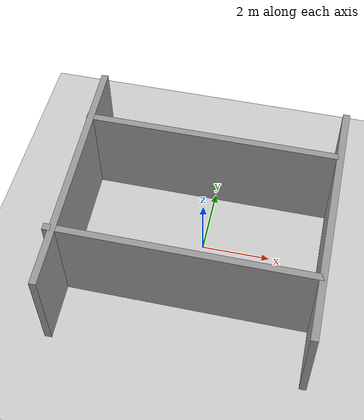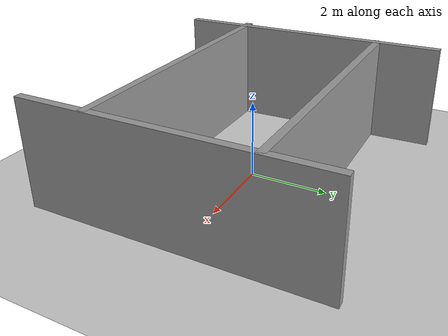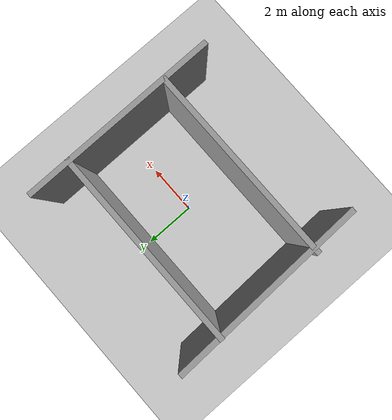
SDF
<sdf version="1.6">
 <world name="default">
  <light name="sun" type="directional">
   <pose>0 0 10 0 -0 0</pose>
   <diffuse>0.8 0.8 0.8 1</diffuse>
   <specular>0.2 0.2 0.2 1</specular>
   <attenuation>
    <range>1000</range>
    <constant>0.9</constant>
    <linear>0.01</linear>
    <quadratic>0.001</quadratic>
   </attenuation>
   <direction>-0.5 0.1 -0.9</direction>
  </light>
  <model name="ground_plane">
   <static>1</static>
   <link name="link">
    <collision name="collision">
     <geometry><plane><normal>0 0 1</normal><size>100 100</size></plane></geometry>
     <surface>
      <contact><collide_bitmask>65535</collide_bitmask></contact>
      <friction><ode><mu>100</mu><mu2>50</mu2></ode></friction>
     </surface>
    </collision>
    <visual name="visual">
     <cast_shadows>0</cast_shadows>
     <geometry><plane><normal>0 0 1</normal><size>100 100</size></plane></geometry>
     <material>
      <script><uri>file://media/materials/scripts/gazebo.material</uri><name>Gazebo/Grey</name></script>
     </material>
    </visual>
   </link>
  </model>
  <gravity>0 0 -9.8</gravity>
  <magnetic_field>6e-06 2.3e-05 -4.2e-05</magnetic_field>
  <atmosphere type="adiabatic"/>
  <physics name="default_physics" default="0" type="ode">
   <max_step_size>0.001</max_step_size>
   <real_time_factor>1</real_time_factor>
   <real_time_update_rate>1000</real_time_update_rate>
  </physics>
  <scene><ambient>0.4 0.4 0.4 1</ambient><background>0.7 0.7 0.7 1</background><shadows>1</shadows></scene>
  <audio><device>default</device></audio>
  <spherical_coordinates>
   <surface_model>EARTH_WGS84</surface_model>
   <latitude_deg>0</latitude_deg>
   <longitude_deg>0</longitude_deg>
   <elevation>0</elevation>
   <heading_deg>0</heading_deg>
  </spherical_coordinates>
  <model name="grey_wall">
   <static>1</static>
   <link name="link">
    <pose>0 0 1.4 0 -0 0</pose>
    <collision name="collision"><geometry><box><size>7.5 0.2 2.8</size></box></geometry></collision>
    <visual name="visual">
     <cast_shadows>0</cast_shadows>
     <geometry><box><size>7.5 0.2 2.8</size></box></geometry>
     <material>
      <script>
       <uri>model://grey_wall/materials/scripts</uri>
       <uri>model://grey_wall/materials/textures</uri>
       <name>vrc/grey_wall</name>
      </script>
     </material>
    </visual>
   </link>
   <pose>-0.139016 -2.0761 0 0 -0 0</pose>
  </model>
  <model name="grey_wall_0">
   <static>1</static>
   <link name="link">
    <pose>0 0 1.4 0 -0 0</pose>
    <collision name="collision"><geometry><box><size>7.5 0.2 2.8</size></box></geometry></collision>
    <visual name="visual">
     <cast_shadows>0</cast_shadows>
     <geometry><box><size>7.5 0.2 2.8</size></box></geometry>
     <material>
      <script>
       <uri>model://grey_wall/materials/scripts</uri>
       <uri>model://grey_wall/materials/textures</uri>
       <name>vrc/grey_wall</name>
      </script>
     </material>
    </visual>
   </link>
   <pose>-0.139341 1.95612 0 0 -0 0</pose>
  </model>
  <model name="grey_wall_1">
   <static>1</static>
   <link name="link">
    <pose>0 0 1.4 0 -0 0</pose>
    <collision name="collision"><geometry><box><size>7.5 0.2 2.8</size></box></geometry></collision>
    <visual name="visual">
     <cast_shadows>0</cast_shadows>
     <geometry><box><size>7.5 0.2 2.8</size></box></geometry>
     <material>
      <script>
       <uri>model://grey_wall/materials/scripts</uri>
       <uri>model://grey_wall/materials/textures</uri>
       <name>vrc/grey_wall</name>
      </script>
     </material>
    </visual>
   </link>
   <pose>3.53293 -0.154703 0 0 0 -1.56319</pose>
  </model>
  <model name="grey_wall_2">
   <static>1</static>
   <link name="link">
    <pose>0 0 1.4 0 -0 0</pose>
    <collision name="collision"><geometry><box><size>7.5 0.2 2.8</size></box></geometry></collision>
    <visual name="visual">
     <cast_shadows>0</cast_shadows>
     <geometry><box><size>7.5 0.2 2.8</size></box></geometry>
     <material>
      <script>
       <uri>model://grey_wall/materials/scripts</uri>
       <uri>model://grey_wall/materials/textures</uri>
       <name>vrc/grey_wall</name>
      </script>
     </material>
    </visual>
   </link>
   <pose>-3.70128 -0.091181 0 0 0 -1.53643</pose>
  </model>
 </world>
</sdf>
